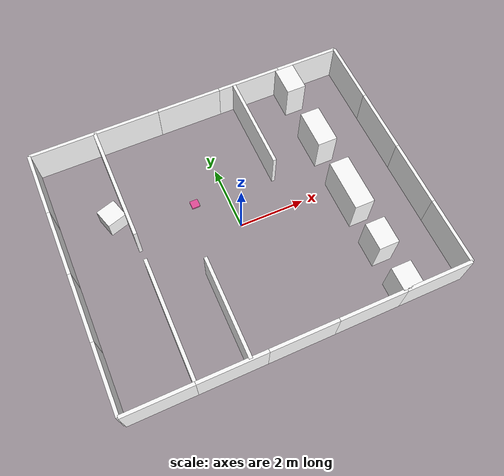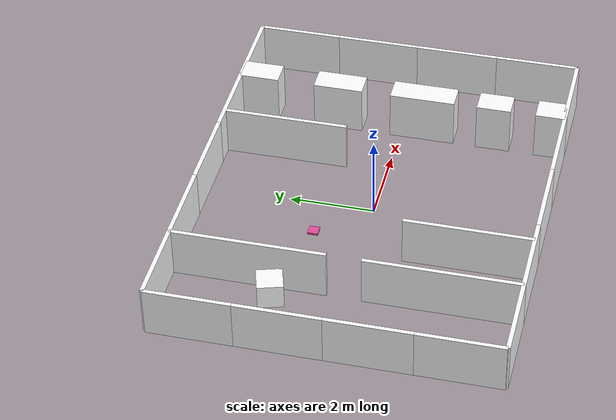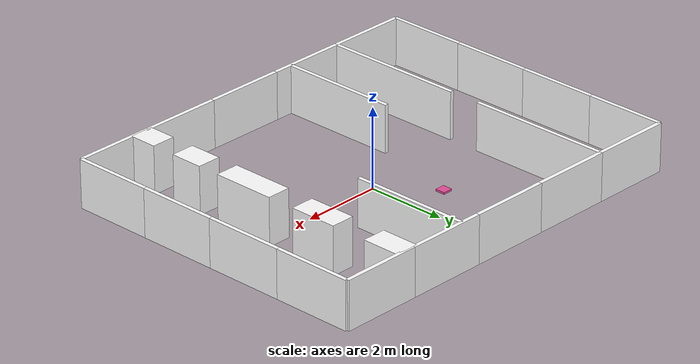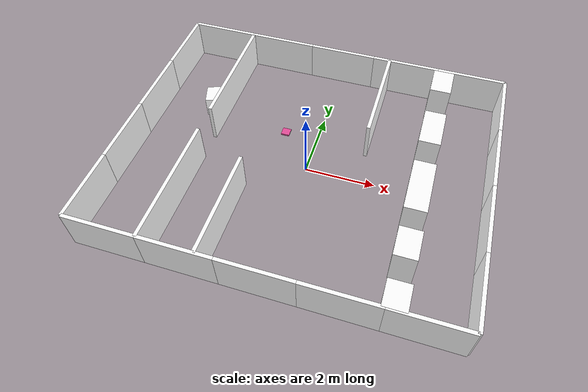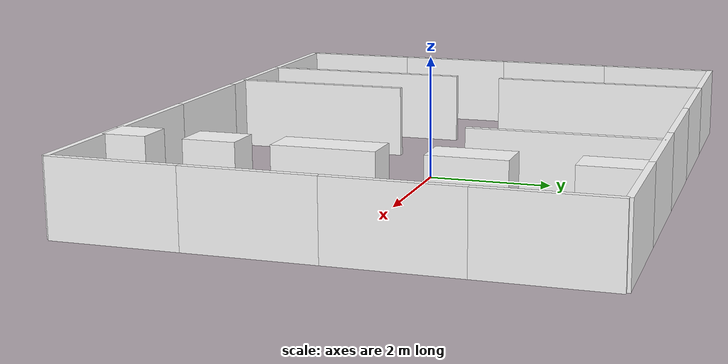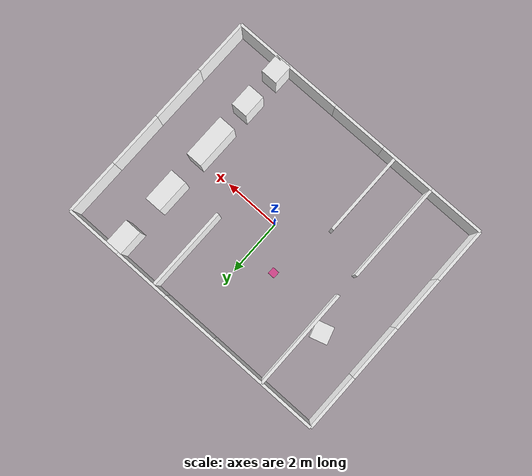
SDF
<sdf version="1.9">
 <world name="room">
  <model name="ground_plane">
   <static>true</static>
   <link name="link">
    <collision name="collision">
     <geometry><plane><normal>0 0 1</normal><size>100 100</size></plane></geometry>
     <surface><friction><ode><mu>1.0</mu><mu2>1.0</mu2></ode></friction></surface>
    </collision>
   </link>
  </model>
  <model name="walls">
   <static>true</static>
   <link name="link">
    <visual name="wall_x_0">
     <pose>5.0 -3.0 0.6 0 0 0</pose>
     <geometry><box><size>0.1 2.0 1.2</size></box></geometry>
     <material>
      <ambient>1 1 1 1</ambient>
      <diffuse>1 1 1 1</diffuse>
      <specular>0.05 0.05 0.05 1</specular>
      <pbr>
       <metal>
        <albedo_map>model://room_materials/materials/textures/wall_00.png</albedo_map>
        <metalness>0.0</metalness>
        <roughness>0.9</roughness>
       </metal>
      </pbr>
     </material>
    </visual>
    <collision name="wall_x_col_0">
     <pose>5.0 -3.0 0.6 0 0 0</pose>
     <geometry><box><size>0.1 2.0 1.2</size></box></geometry>
    </collision>
    <visual name="wall_x_1">
     <pose>5.0 -1.0 0.6 0 0 0</pose>
     <geometry><box><size>0.1 2.0 1.2</size></box></geometry>
     <material>
      <ambient>1 1 1 1</ambient>
      <diffuse>1 1 1 1</diffuse>
      <specular>0.05 0.05 0.05 1</specular>
      <pbr>
       <metal>
        <albedo_map>model://room_materials/materials/textures/wall_01.png</albedo_map>
        <metalness>0.0</metalness>
        <roughness>0.9</roughness>
       </metal>
      </pbr>
     </material>
    </visual>
    <collision name="wall_x_col_1">
     <pose>5.0 -1.0 0.6 0 0 0</pose>
     <geometry><box><size>0.1 2.0 1.2</size></box></geometry>
    </collision>
    <visual name="wall_x_2">
     <pose>5.0 1.0 0.6 0 0 0</pose>
     <geometry><box><size>0.1 2.0 1.2</size></box></geometry>
     <material>
      <ambient>1 1 1 1</ambient>
      <diffuse>1 1 1 1</diffuse>
      <specular>0.05 0.05 0.05 1</specular>
      <pbr>
       <metal>
        <albedo_map>model://room_materials/materials/textures/wall_02.png</albedo_map>
        <metalness>0.0</metalness>
        <roughness>0.9</roughness>
       </metal>
      </pbr>
     </material>
    </visual>
    <collision name="wall_x_col_2">
     <pose>5.0 1.0 0.6 0 0 0</pose>
     <geometry><box><size>0.1 2.0 1.2</size></box></geometry>
    </collision>
    <visual name="wall_x_3">
     <pose>5.0 3.0 0.6 0 0 0</pose>
     <geometry><box><size>0.1 2.0 1.2</size></box></geometry>
     <material>
      <ambient>1 1 1 1</ambient>
      <diffuse>1 1 1 1</diffuse>
      <specular>0.05 0.05 0.05 1</specular>
      <pbr>
       <metal>
        <albedo_map>model://room_materials/materials/textures/wall_03.png</albedo_map>
        <metalness>0.0</metalness>
        <roughness>0.9</roughness>
       </metal>
      </pbr>
     </material>
    </visual>
    <collision name="wall_x_col_3">
     <pose>5.0 3.0 0.6 0 0 0</pose>
     <geometry><box><size>0.1 2.0 1.2</size></box></geometry>
    </collision>
    <visual name="wall_x_4">
     <pose>-5.0 -3.0 0.6 0 0 0</pose>
     <geometry><box><size>0.1 2.0 1.2</size></box></geometry>
     <material>
      <ambient>1 1 1 1</ambient>
      <diffuse>1 1 1 1</diffuse>
      <specular>0.05 0.05 0.05 1</specular>
      <pbr>
       <metal>
        <albedo_map>model://room_materials/materials/textures/wall_04.png</albedo_map>
        <metalness>0.0</metalness>
        <roughness>0.9</roughness>
       </metal>
      </pbr>
     </material>
    </visual>
    <collision name="wall_x_col_4">
     <pose>-5.0 -3.0 0.6 0 0 0</pose>
     <geometry><box><size>0.1 2.0 1.2</size></box></geometry>
    </collision>
    <visual name="wall_x_5">
     <pose>-5.0 -1.0 0.6 0 0 0</pose>
     <geometry><box><size>0.1 2.0 1.2</size></box></geometry>
     <material>
      <ambient>1 1 1 1</ambient>
      <diffuse>1 1 1 1</diffuse>
      <specular>0.05 0.05 0.05 1</specular>
      <pbr>
       <metal>
        <albedo_map>model://room_materials/materials/textures/wall_05.png</albedo_map>
        <metalness>0.0</metalness>
        <roughness>0.9</roughness>
       </metal>
      </pbr>
     </material>
    </visual>
    <collision name="wall_x_col_5">
     <pose>-5.0 -1.0 0.6 0 0 0</pose>
     <geometry><box><size>0.1 2.0 1.2</size></box></geometry>
    </collision>
    <visual name="wall_x_6">
     <pose>-5.0 1.0 0.6 0 0 0</pose>
     <geometry><box><size>0.1 2.0 1.2</size></box></geometry>
     <material>
      <ambient>1 1 1 1</ambient>
      <diffuse>1 1 1 1</diffuse>
      <specular>0.05 0.05 0.05 1</specular>
      <pbr>
       <metal>
        <albedo_map>model://room_materials/materials/textures/wall_06.png</albedo_map>
        <metalness>0.0</metalness>
        <roughness>0.9</roughness>
       </metal>
      </pbr>
     </material>
    </visual>
    <collision name="wall_x_col_6">
     <pose>-5.0 1.0 0.6 0 0 0</pose>
     <geometry><box><size>0.1 2.0 1.2</size></box></geometry>
    </collision>
    <visual name="wall_x_7">
     <pose>-5.0 3.0 0.6 0 0 0</pose>
     <geometry><box><size>0.1 2.0 1.2</size></box></geometry>
     <material>
      <ambient>1 1 1 1</ambient>
      <diffuse>1 1 1 1</diffuse>
      <specular>0.05 0.05 0.05 1</specular>
      <pbr>
       <metal>
        <albedo_map>model://room_materials/materials/textures/wall_07.png</albedo_map>
        <metalness>0.0</metalness>
        <roughness>0.9</roughness>
       </metal>
      </pbr>
     </material>
    </visual>
    <collision name="wall_x_col_7">
     <pose>-5.0 3.0 0.6 0 0 0</pose>
     <geometry><box><size>0.1 2.0 1.2</size></box></geometry>
    </collision>
    <visual name="wall_y_0">
     <pose>-4.0 4.0 0.6 0 0 0</pose>
     <geometry><box><size>2.0 0.1 1.2</size></box></geometry>
     <material>
      <ambient>1 1 1 1</ambient>
      <diffuse>1 1 1 1</diffuse>
      <specular>0.05 0.05 0.05 1</specular>
      <pbr>
       <metal>
        <albedo_map>model://room_materials/materials/textures/wall_08.png</albedo_map>
        <metalness>0.0</metalness>
        <roughness>0.9</roughness>
       </metal>
      </pbr>
     </material>
    </visual>
    <collision name="wall_y_col_0">
     <pose>-4.0 4.0 0.6 0 0 0</pose>
     <geometry><box><size>2.0 0.1 1.2</size></box></geometry>
    </collision>
    <visual name="wall_y_1">
     <pose>-2.0 4.0 0.6 0 0 0</pose>
     <geometry><box><size>2.0 0.1 1.2</size></box></geometry>
     <material>
      <ambient>1 1 1 1</ambient>
      <diffuse>1 1 1 1</diffuse>
      <specular>0.05 0.05 0.05 1</specular>
      <pbr>
       <metal>
        <albedo_map>model://room_materials/materials/textures/wall_09.png</albedo_map>
        <metalness>0.0</metalness>
        <roughness>0.9</roughness>
       </metal>
      </pbr>
     </material>
    </visual>
    <collision name="wall_y_col_1">
     <pose>-2.0 4.0 0.6 0 0 0</pose>
     <geometry><box><size>2.0 0.1 1.2</size></box></geometry>
    </collision>
    <visual name="wall_y_2">
     <pose>0.0 4.0 0.6 0 0 0</pose>
     <geometry><box><size>2.0 0.1 1.2</size></box></geometry>
     <material>
      <ambient>1 1 1 1</ambient>
      <diffuse>1 1 1 1</diffuse>
      <specular>0.05 0.05 0.05 1</specular>
      <pbr>
       <metal>
        <albedo_map>model://room_materials/materials/textures/wall_10.png</albedo_map>
        <metalness>0.0</metalness>
        <roughness>0.9</roughness>
       </metal>
      </pbr>
     </material>
    </visual>
    <collision name="wall_y_col_2">
     <pose>0.0 4.0 0.6 0 0 0</pose>
     <geometry><box><size>2.0 0.1 1.2</size></box></geometry>
    </collision>
    <visual name="wall_y_3">
     <pose>2.0 4.0 0.6 0 0 0</pose>
     <geometry><box><size>2.0 0.1 1.2</size></box></geometry>
     <material>
      <ambient>1 1 1 1</ambient>
      <diffuse>1 1 1 1</diffuse>
      <specular>0.05 0.05 0.05 1</specular>
      <pbr>
       <metal>
        <albedo_map>model://room_materials/materials/textures/wall_11.png</albedo_map>
        <metalness>0.0</metalness>
        <roughness>0.9</roughness>
       </metal>
      </pbr>
     </material>
    </visual>
    <collision name="wall_y_col_3">
     <pose>2.0 4.0 0.6 0 0 0</pose>
     <geometry><box><size>2.0 0.1 1.2</size></box></geometry>
    </collision>
    <visual name="wall_y_4">
     <pose>4.0 4.0 0.6 0 0 0</pose>
     <geometry><box><size>2.0 0.1 1.2</size></box></geometry>
     <material>
      <ambient>1 1 1 1</ambient>
      <diffuse>1 1 1 1</diffuse>
      <specular>0.05 0.05 0.05 1</specular>
      <pbr>
       <metal>
        <albedo_map>model://room_materials/materials/textures/wall_12.png</albedo_map>
        <metalness>0.0</metalness>
        <roughness>0.9</roughness>
       </metal>
      </pbr>
     </material>
    </visual>
    <collision name="wall_y_col_4">
     <pose>4.0 4.0 0.6 0 0 0</pose>
     <geometry><box><size>2.0 0.1 1.2</size></box></geometry>
    </collision>
    <visual name="wall_y_5">
     <pose>-4.0 -4.0 0.6 0 0 0</pose>
     <geometry><box><size>2.0 0.1 1.2</size></box></geometry>
     <material>
      <ambient>1 1 1 1</ambient>
      <diffuse>1 1 1 1</diffuse>
      <specular>0.05 0.05 0.05 1</specular>
      <pbr>
       <metal>
        <albedo_map>model://room_materials/materials/textures/wall_13.png</albedo_map>
        <metalness>0.0</metalness>
        <roughness>0.9</roughness>
       </metal>
      </pbr>
     </material>
    </visual>
    <collision name="wall_y_col_5">
     <pose>-4.0 -4.0 0.6 0 0 0</pose>
     <geometry><box><size>2.0 0.1 1.2</size></box></geometry>
    </collision>
    <visual name="wall_y_6">
     <pose>-2.0 -4.0 0.6 0 0 0</pose>
     <geometry><box><size>2.0 0.1 1.2</size></box></geometry>
     <material>
      <ambient>1 1 1 1</ambient>
      <diffuse>1 1 1 1</diffuse>
      <specular>0.05 0.05 0.05 1</specular>
      <pbr>
       <metal>
        <albedo_map>model://room_materials/materials/textures/wall_14.png</albedo_map>
        <metalness>0.0</metalness>
        <roughness>0.9</roughness>
       </metal>
      </pbr>
     </material>
    </visual>
    <collision name="wall_y_col_6">
     <pose>-2.0 -4.0 0.6 0 0 0</pose>
     <geometry><box><size>2.0 0.1 1.2</size></box></geometry>
    </collision>
    <visual name="wall_y_7">
     <pose>0.0 -4.0 0.6 0 0 0</pose>
     <geometry><box><size>2.0 0.1 1.2</size></box></geometry>
     <material>
      <ambient>1 1 1 1</ambient>
      <diffuse>1 1 1 1</diffuse>
      <specular>0.05 0.05 0.05 1</specular>
      <pbr>
       <metal>
        <albedo_map>model://room_materials/materials/textures/wall_15.png</albedo_map>
        <metalness>0.0</metalness>
        <roughness>0.9</roughness>
       </metal>
      </pbr>
     </material>
    </visual>
    <collision name="wall_y_col_7">
     <pose>0.0 -4.0 0.6 0 0 0</pose>
     <geometry><box><size>2.0 0.1 1.2</size></box></geometry>
    </collision>
    <visual name="wall_y_8">
     <pose>2.0 -4.0 0.6 0 0 0</pose>
     <geometry><box><size>2.0 0.1 1.2</size></box></geometry>
     <material>
      <ambient>1 1 1 1</ambient>
      <diffuse>1 1 1 1</diffuse>
      <specular>0.05 0.05 0.05 1</specular>
      <pbr>
       <metal>
        <albedo_map>model://room_materials/materials/textures/wall_16.png</albedo_map>
        <metalness>0.0</metalness>
        <roughness>0.9</roughness>
       </metal>
      </pbr>
     </material>
    </visual>
    <collision name="wall_y_col_8">
     <pose>2.0 -4.0 0.6 0 0 0</pose>
     <geometry><box><size>2.0 0.1 1.2</size></box></geometry>
    </collision>
    <visual name="wall_y_9">
     <pose>4.0 -4.0 0.6 0 0 0</pose>
     <geometry><box><size>2.0 0.1 1.2</size></box></geometry>
     <material>
      <ambient>1 1 1 1</ambient>
      <diffuse>1 1 1 1</diffuse>
      <specular>0.05 0.05 0.05 1</specular>
      <pbr>
       <metal>
        <albedo_map>model://room_materials/materials/textures/wall_17.png</albedo_map>
        <metalness>0.0</metalness>
        <roughness>0.9</roughness>
       </metal>
      </pbr>
     </material>
    </visual>
    <collision name="wall_y_col_9">
     <pose>4.0 -4.0 0.6 0 0 0</pose>
     <geometry><box><size>2.0 0.1 1.2</size></box></geometry>
    </collision>
   </link>
  </model>
  <model name="partitions">
   <static>true</static>
   <link name="link">
    <visual name="part_0">
     <pose>-1.5 -2.5 0.6 0 0 0</pose>
     <geometry><box><size>0.1 3.0 1.2</size></box></geometry>
     <material>
      <ambient>1 1 1 1</ambient>
      <diffuse>1 1 1 1</diffuse>
      <specular>0.05 0.05 0.05 1</specular>
      <pbr>
       <metal>
        <albedo_map>model://room_materials/materials/textures/wall_18.png</albedo_map>
        <metalness>0.0</metalness>
        <roughness>0.9</roughness>
       </metal>
      </pbr>
     </material>
    </visual>
    <collision name="part_col_0">
     <pose>-1.5 -2.5 0.6 0 0 0</pose>
     <geometry><box><size>0.1 3.0 1.2</size></box></geometry>
    </collision>
    <visual name="part_1">
     <pose>1.5 2.5 0.6 0 0 0</pose>
     <geometry><box><size>0.1 3.0 1.2</size></box></geometry>
     <material>
      <ambient>1 1 1 1</ambient>
      <diffuse>1 1 1 1</diffuse>
      <specular>0.05 0.05 0.05 1</specular>
      <pbr>
       <metal>
        <albedo_map>model://room_materials/materials/textures/wall_19.png</albedo_map>
        <metalness>0.0</metalness>
        <roughness>0.9</roughness>
       </metal>
      </pbr>
     </material>
    </visual>
    <collision name="part_col_1">
     <pose>1.5 2.5 0.6 0 0 0</pose>
     <geometry><box><size>0.1 3.0 1.2</size></box></geometry>
    </collision>
   </link>
  </model>
  <model name="passages">
   <static>true</static>
   <link name="link">
    <visual name="main_0">
     <pose>-3.0 -2.2 0.6 0 0 0</pose>
     <geometry><box><size>0.1 3.6 1.2</size></box></geometry>
     <material>
      <ambient>1 1 1 1</ambient>
      <diffuse>1 1 1 1</diffuse>
      <specular>0.05 0.05 0.05 1</specular>
      <pbr>
       <metal>
        <albedo_map>model://room_materials/materials/textures/wall_26.png</albedo_map>
        <metalness>0.0</metalness>
        <roughness>0.9</roughness>
       </metal>
      </pbr>
     </material>
    </visual>
    <collision name="main_col_0">
     <pose>-3.0 -2.2 0.6 0 0 0</pose>
     <geometry><box><size>0.1 3.6 1.2</size></box></geometry>
    </collision>
    <visual name="main_1">
     <pose>-3.0 2.2 0.6 0 0 0</pose>
     <geometry><box><size>0.1 3.6 1.2</size></box></geometry>
     <material>
      <ambient>1 1 1 1</ambient>
      <diffuse>1 1 1 1</diffuse>
      <specular>0.05 0.05 0.05 1</specular>
      <pbr>
       <metal>
        <albedo_map>model://room_materials/materials/textures/wall_27.png</albedo_map>
        <metalness>0.0</metalness>
        <roughness>0.9</roughness>
       </metal>
      </pbr>
     </material>
    </visual>
    <collision name="main_col_1">
     <pose>-3.0 2.2 0.6 0 0 0</pose>
     <geometry><box><size>0.1 3.6 1.2</size></box></geometry>
    </collision>
    <visual name="corr_0">
     <pose>3.2 -3.65 0.6 0 0 0</pose>
     <geometry><box><size>0.6 0.7000000000000002 1.2</size></box></geometry>
     <material>
      <ambient>1 1 1 1</ambient>
      <diffuse>1 1 1 1</diffuse>
      <specular>0.05 0.05 0.05 1</specular>
      <pbr>
       <metal>
        <albedo_map>model://room_materials/materials/textures/wall_21.png</albedo_map>
        <metalness>0.0</metalness>
        <roughness>0.9</roughness>
       </metal>
      </pbr>
     </material>
    </visual>
    <collision name="corr_col_0">
     <pose>3.2 -3.65 0.6 0 0 0</pose>
     <geometry><box><size>0.6 0.7000000000000002 1.2</size></box></geometry>
    </collision>
    <visual name="corr_1">
     <pose>3.2 -2.2875 0.6 0 0 0</pose>
     <geometry><box><size>0.6 0.8250000000000002 1.2</size></box></geometry>
     <material>
      <ambient>1 1 1 1</ambient>
      <diffuse>1 1 1 1</diffuse>
      <specular>0.05 0.05 0.05 1</specular>
      <pbr>
       <metal>
        <albedo_map>model://room_materials/materials/textures/wall_22.png</albedo_map>
        <metalness>0.0</metalness>
        <roughness>0.9</roughness>
       </metal>
      </pbr>
     </material>
    </visual>
    <collision name="corr_col_1">
     <pose>3.2 -2.2875 0.6 0 0 0</pose>
     <geometry><box><size>0.6 0.8250000000000002 1.2</size></box></geometry>
    </collision>
    <visual name="corr_2">
     <pose>3.2 -0.5375000000000001 0.6 0 0 0</pose>
     <geometry><box><size>0.6 1.5750000000000002 1.2</size></box></geometry>
     <material>
      <ambient>1 1 1 1</ambient>
      <diffuse>1 1 1 1</diffuse>
      <specular>0.05 0.05 0.05 1</specular>
      <pbr>
       <metal>
        <albedo_map>model://room_materials/materials/textures/wall_23.png</albedo_map>
        <metalness>0.0</metalness>
        <roughness>0.9</roughness>
       </metal>
      </pbr>
     </material>
    </visual>
    <collision name="corr_col_2">
     <pose>3.2 -0.5375000000000001 0.6 0 0 0</pose>
     <geometry><box><size>0.6 1.5750000000000002 1.2</size></box></geometry>
    </collision>
    <visual name="corr_3">
     <pose>3.2 1.5499999999999998 0.6 0 0 0</pose>
     <geometry><box><size>0.6 1.2 1.2</size></box></geometry>
     <material>
      <ambient>1 1 1 1</ambient>
      <diffuse>1 1 1 1</diffuse>
      <specular>0.05 0.05 0.05 1</specular>
      <pbr>
       <metal>
        <albedo_map>model://room_materials/materials/textures/wall_24.png</albedo_map>
        <metalness>0.0</metalness>
        <roughness>0.9</roughness>
       </metal>
      </pbr>
     </material>
    </visual>
    <collision name="corr_col_3">
     <pose>3.2 1.5499999999999998 0.6 0 0 0</pose>
     <geometry><box><size>0.6 1.2 1.2</size></box></geometry>
    </collision>
    <visual name="corr_4">
     <pose>3.2 3.5250000000000004 0.6 0 0 0</pose>
     <geometry><box><size>0.6 0.9499999999999997 1.2</size></box></geometry>
     <material>
      <ambient>1 1 1 1</ambient>
      <diffuse>1 1 1 1</diffuse>
      <specular>0.05 0.05 0.05 1</specular>
      <pbr>
       <metal>
        <albedo_map>model://room_materials/materials/textures/wall_25.png</albedo_map>
        <metalness>0.0</metalness>
        <roughness>0.9</roughness>
       </metal>
      </pbr>
     </material>
    </visual>
    <collision name="corr_col_4">
     <pose>3.2 3.5250000000000004 0.6 0 0 0</pose>
     <geometry><box><size>0.6 0.9499999999999997 1.2</size></box></geometry>
    </collision>
   </link>
  </model>
  <model name="crate_1">
   <static>true</static>
   <pose>-3.4 1.6 0.3 0 0 0.3</pose>
   <link name="link">
    <collision name="collision"><geometry><box><size>0.6 0.6 0.6</size></box></geometry></collision>
    <visual name="visual">
     <geometry><box><size>0.6 0.6 0.6</size></box></geometry>
     <material>
      <ambient>1 1 1 1</ambient>
      <diffuse>1 1 1 1</diffuse>
      <specular>0.05 0.05 0.05 1</specular>
      <pbr>
       <metal>
        <albedo_map>model://room_materials/materials/textures/crate.png</albedo_map>
        <metalness>0.0</metalness>
        <roughness>0.9</roughness>
       </metal>
      </pbr>
     </material>
    </visual>
   </link>
  </model>
  <model name="low_obstacle_1">
   <static>true</static>
   <pose>-1.0 1.2 0.025 0 0 0</pose>
   <link name="link">
    <collision name="collision"><geometry><box><size>0.25 0.25 0.05</size></box></geometry></collision>
    <visual name="visual">
     <geometry><box><size>0.25 0.25 0.05</size></box></geometry>
     <material><ambient>0.9 0.3 0.6 1</ambient><diffuse>0.9 0.3 0.6 1</diffuse></material>
    </visual>
   </link>
  </model>
 </world>
</sdf>
